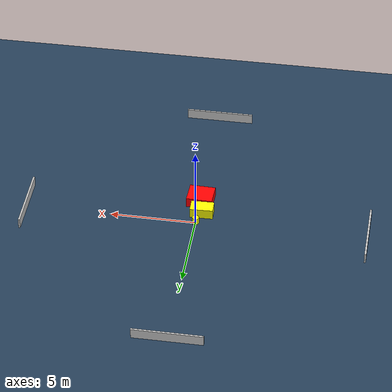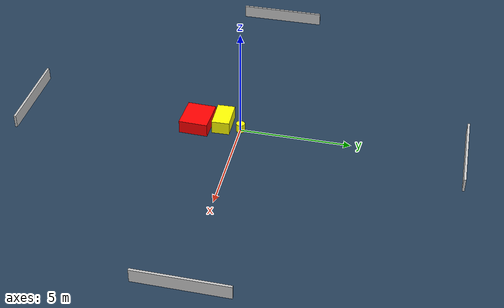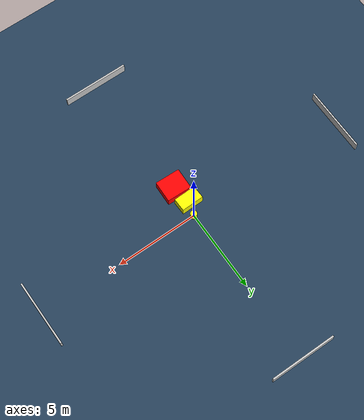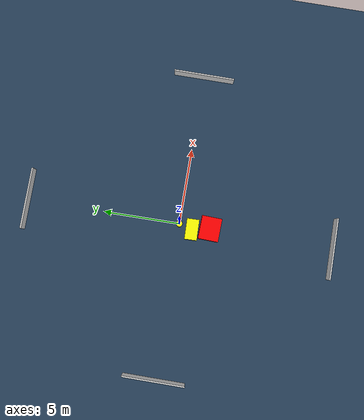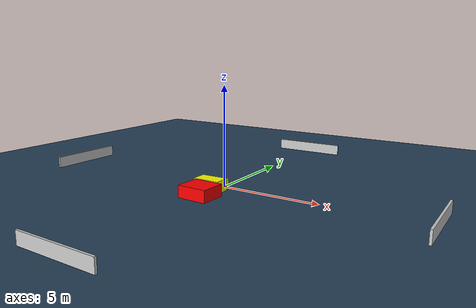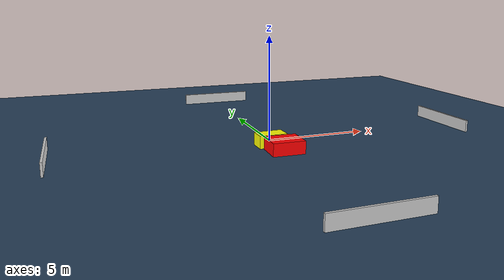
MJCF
<?xml version="1.0" ?>
<mujoco model="generated_environment">
  <option timestep="0.01" integrator="RK4" cone="elliptic"/>
  <default>
    <geom density="1"/>
  </default>
  <asset>
    <texture builtin="gradient" height="3072" name="skybox" rgb1="0.3 0.5 0.7" rgb2="0 0 0" type="skybox" width="512"/>
    <texture builtin="checker" height="300" name="groundplane" rgb1="0.2 0.3 0.4" rgb2="0.1 0.2 0.3" type="2d" width="300"/>
    <material name="groundplane" reflectance="0.2" texrepeat="5 5" texture="groundplane"/>
  </asset>
  <worldbody>
    <light dir="0 0 -1" directional="true" pos="0 0 1.5"/>
    <geom condim="3" friction="0.5 0.005 0.001" material="groundplane" name="floor" pos="0 0 0" size="0 0 0.05" type="plane"/>
    <body name="walls">
      <geom name="wall_1" condim="4" pos="-10.0 0.0 0.3" rgba="0.800000011920929 0.800000011920929 0.800000011920929 1.0" size="0.05 2.0 0.3" type="box"/>
      <geom name="wall_2" condim="4" pos="10.0 0.0 0.3" rgba="0.800000011920929 0.800000011920929 0.800000011920929 1.0" size="0.05 2.0 0.3" type="box"/>
      <geom name="wall_3" condim="4" pos="0.0 -10.0 0.3" rgba="0.800000011920929 0.800000011920929 0.800000011920929 1.0" size="2.0 0.05 0.3" type="box"/>
      <geom name="wall_4" condim="4" pos="0.0 10.0 0.3" rgba="0.800000011920929 0.800000011920929 0.800000011920929 1.0" size="2.0 0.05 0.3" type="box"/>
    </body>
    <body name="robot">
      <joint name="joint_x" type="slide" pos="0 0 0" axis="1 0 0"/>
      <joint name="joint_y" type="slide" pos="0 0 0" axis="0 1 0"/>
      <geom name="robot" type="cylinder" pos="0.0 0.0 0.2" size="0.2 0.2 0.0" mass="5.0" friction="1.0 0.005 0.0001" condim="4" rgba="1.0 1.0 0.0 1.0"/>
    </body>
    <body name="obstacle_1_movable">
      <geom name="obstacle_1_movable" condim="4" pos="-0.24783059920808598 -0.852386974624621 0.3" euler="0 0 181.41300240108876" friction="0.0 0.005 0.001" rgba="1.0 1.0 0.0 1.0" size="0.672251248992715 0.39846800073616234 0.3" type="box" mass="0.1"/>
      <joint type="free"/>
    </body>
    <body name="obstacle_2_static">
      <geom name="obstacle_2_static" condim="4" pos="-0.011052408928735052 -1.9995186084200203 0.3" euler="0 0 178.18378979823754" friction="0.0 0.005 0.001" rgba="1.0 0.0 0.0 1.0" size="0.7545496453726592 0.6503105233756574 0.3" type="box"/>
    </body>
  </worldbody>
  <actuator>
    <motor name="actuator_x" joint="joint_x" gear="1" ctrlrange="-1 1"/>
    <motor name="actuator_y" joint="joint_y" gear="1" ctrlrange="-1 1"/>
  </actuator>
</mujoco>
